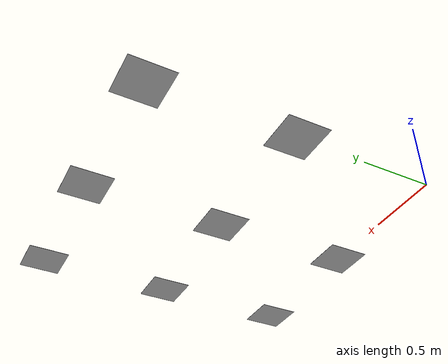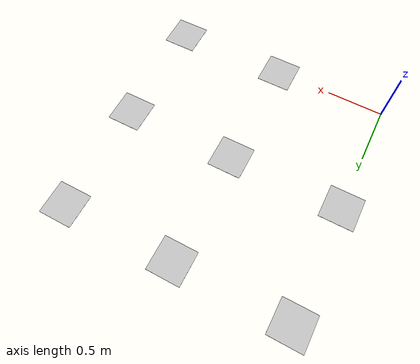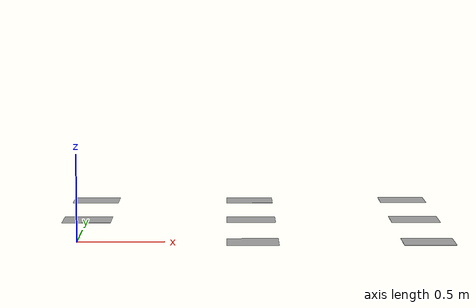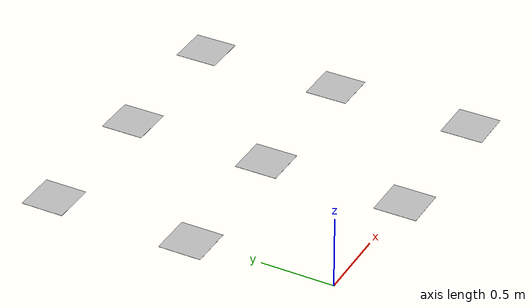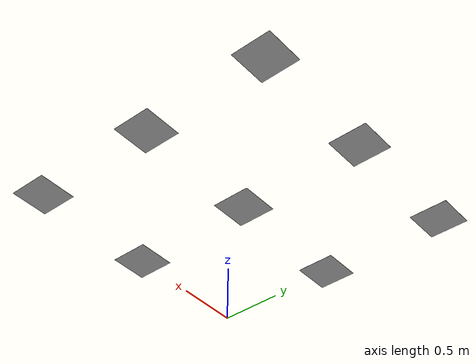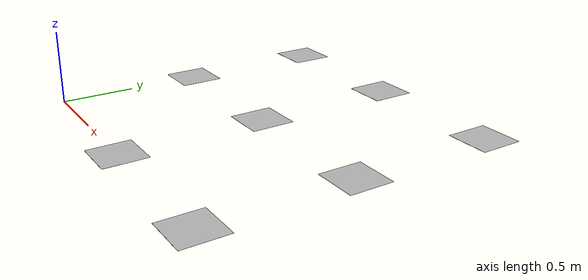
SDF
<?xml version="1.0"?>
<sdf version="1.5">
    <model name="aruco_2_99">
        <static>true</static>
        <link name="aruco_2_99_link">

<visual name="visual_marker_2_103">
    <pose>0.0 2.0 0.0 0.0 0.0 1.57079632679</pose>
    <cast_shadows>false</cast_shadows>
    <geometry>
        <box>
            <size>0.297 0.297 1e-3</size>
        </box>
    </geometry>
    <material>
        <script>
            <uri>model://aruco_cmit_txt/materials/scripts</uri>
            <uri>model://aruco_cmit_txt/materials/textures</uri>
            <name>aruco/marker_2_103</name>
        </script>
    </material>
</visual>

<visual name="visual_marker_2_105">
    <pose>1.0 2.0 0.0 0.0 0.0 1.57079632679</pose>
    <cast_shadows>false</cast_shadows>
    <geometry>
        <box>
            <size>0.297 0.297 1e-3</size>
        </box>
    </geometry>
    <material>
        <script>
            <uri>model://aruco_cmit_txt/materials/scripts</uri>
            <uri>model://aruco_cmit_txt/materials/textures</uri>
            <name>aruco/marker_2_105</name>
        </script>
    </material>
</visual>

<visual name="visual_marker_2_106">
    <pose>2.0 2.0 0.0 0.0 0.0 1.57079632679</pose>
    <cast_shadows>false</cast_shadows>
    <geometry>
        <box>
            <size>0.297 0.297 1e-3</size>
        </box>
    </geometry>
    <material>
        <script>
            <uri>model://aruco_cmit_txt/materials/scripts</uri>
            <uri>model://aruco_cmit_txt/materials/textures</uri>
            <name>aruco/marker_2_106</name>
        </script>
    </material>
</visual>

<visual name="visual_marker_2_100">
    <pose>0.0 1.0 0.0 0.0 0.0 1.57079632679</pose>
    <cast_shadows>false</cast_shadows>
    <geometry>
        <box>
            <size>0.297 0.297 1e-3</size>
        </box>
    </geometry>
    <material>
        <script>
            <uri>model://aruco_cmit_txt/materials/scripts</uri>
            <uri>model://aruco_cmit_txt/materials/textures</uri>
            <name>aruco/marker_2_100</name>
        </script>
    </material>
</visual>

<visual name="visual_marker_2_101">
    <pose>1.0 1.0 0.0 0.0 0.0 1.57079632679</pose>
    <cast_shadows>false</cast_shadows>
    <geometry>
        <box>
            <size>0.297 0.297 1e-3</size>
        </box>
    </geometry>
    <material>
        <script>
            <uri>model://aruco_cmit_txt/materials/scripts</uri>
            <uri>model://aruco_cmit_txt/materials/textures</uri>
            <name>aruco/marker_2_101</name>
        </script>
    </material>
</visual>

<visual name="visual_marker_2_102">
    <pose>2.0 1.0 0.0 0.0 0.0 1.57079632679</pose>
    <cast_shadows>false</cast_shadows>
    <geometry>
        <box>
            <size>0.297 0.297 1e-3</size>
        </box>
    </geometry>
    <material>
        <script>
            <uri>model://aruco_cmit_txt/materials/scripts</uri>
            <uri>model://aruco_cmit_txt/materials/textures</uri>
            <name>aruco/marker_2_102</name>
        </script>
    </material>
</visual>

<visual name="visual_marker_2_15">
    <pose>1.0 0.0 0.0 0.0 0.0 1.57079632679</pose>
    <cast_shadows>false</cast_shadows>
    <geometry>
        <box>
            <size>0.297 0.297 1e-3</size>
        </box>
    </geometry>
    <material>
        <script>
            <uri>model://aruco_cmit_txt/materials/scripts</uri>
            <uri>model://aruco_cmit_txt/materials/textures</uri>
            <name>aruco/marker_2_15</name>
        </script>
    </material>
</visual>

<visual name="visual_marker_2_16">
    <pose>2.0 0.0 0.0 0.0 0.0 1.57079632679</pose>
    <cast_shadows>false</cast_shadows>
    <geometry>
        <box>
            <size>0.297 0.297 1e-3</size>
        </box>
    </geometry>
    <material>
        <script>
            <uri>model://aruco_cmit_txt/materials/scripts</uri>
            <uri>model://aruco_cmit_txt/materials/textures</uri>
            <name>aruco/marker_2_16</name>
        </script>
    </material>
</visual>

        </link>
    </model>
</sdf>
